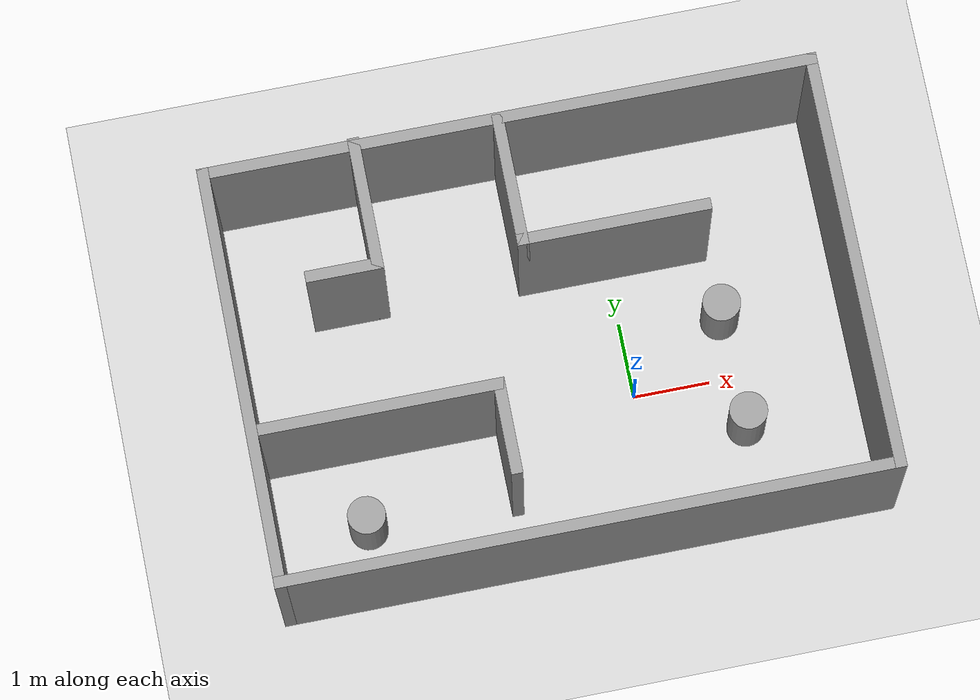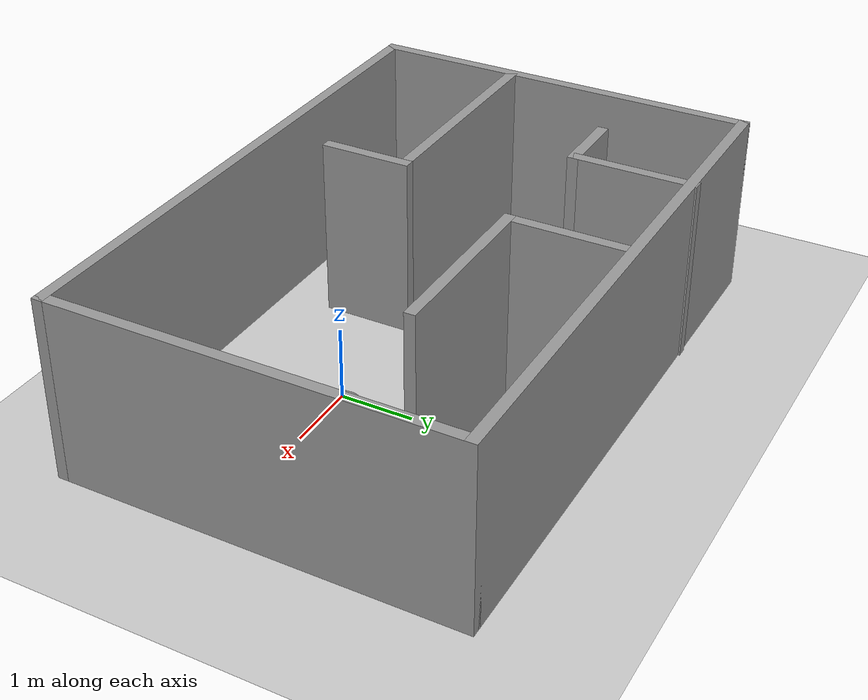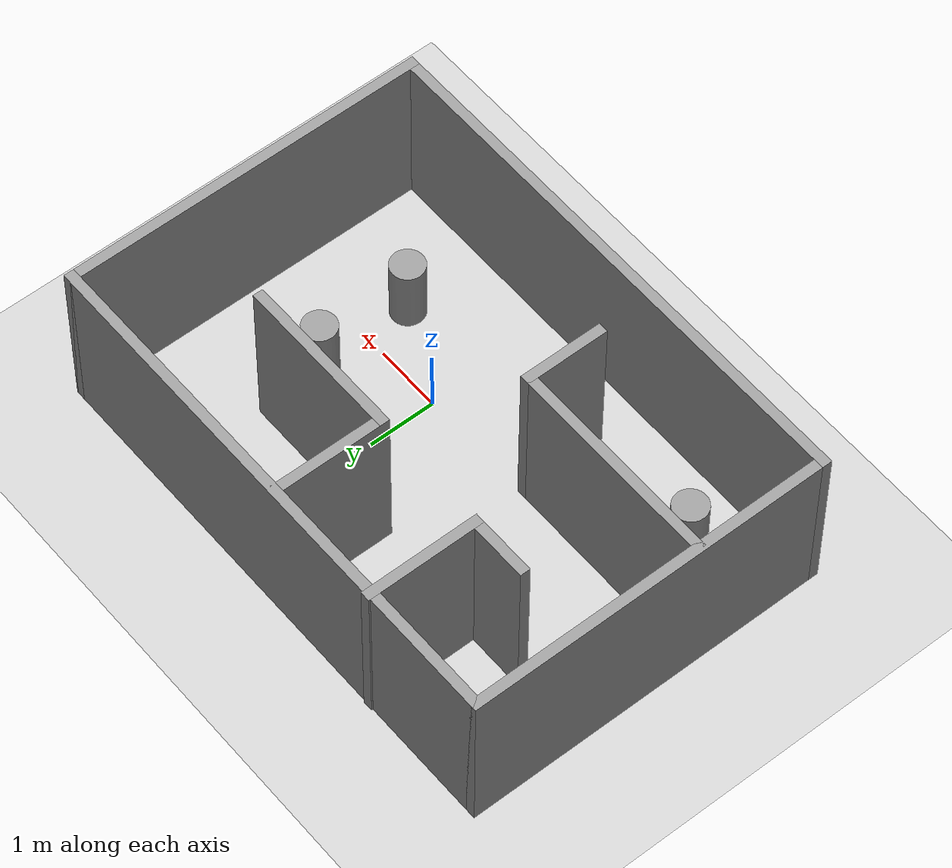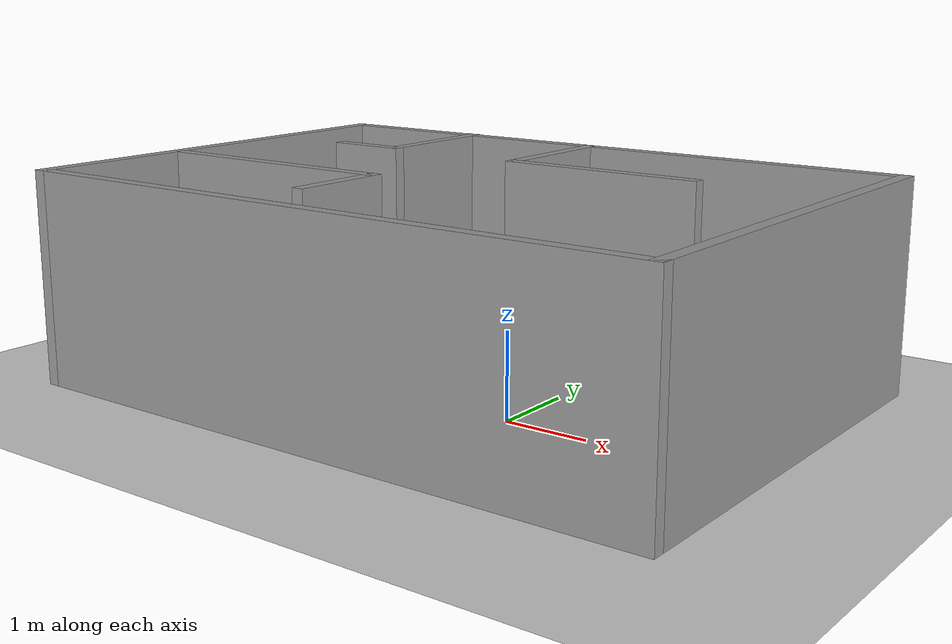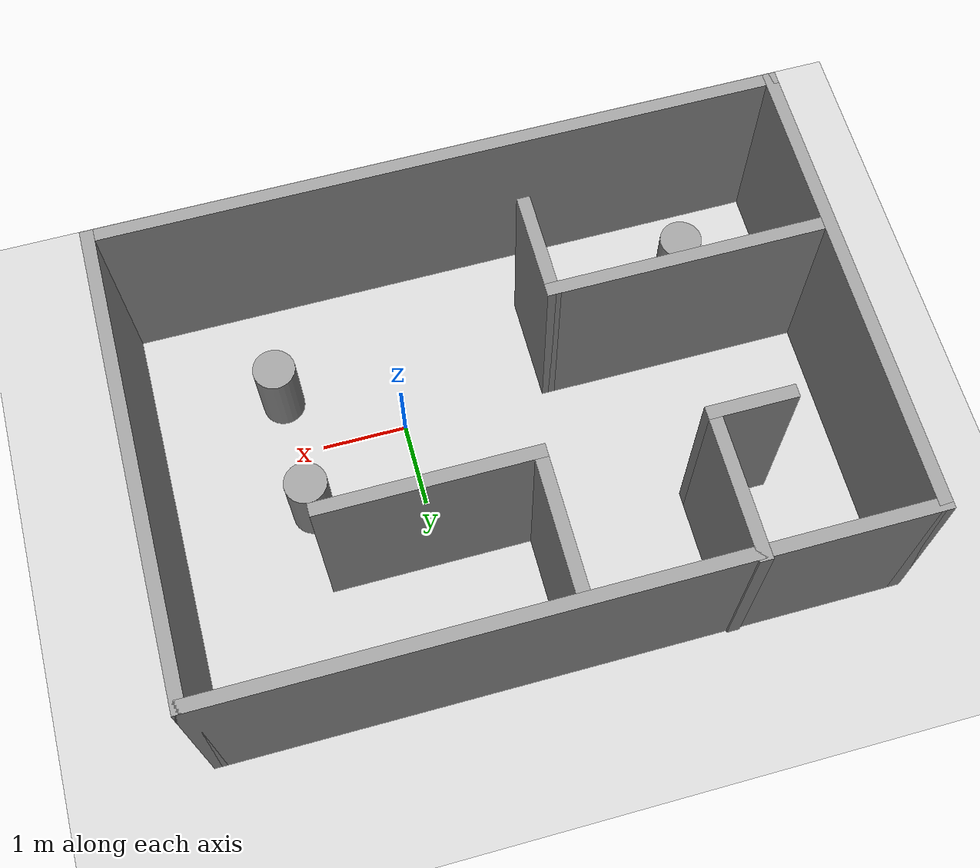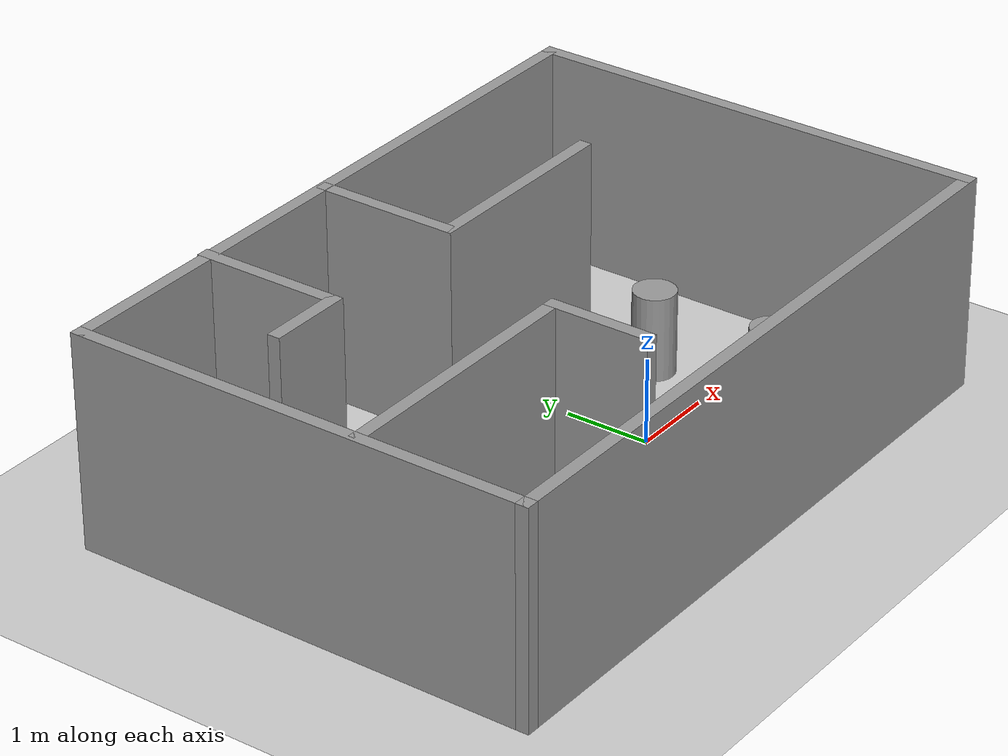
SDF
<sdf version="1.7">
 <world name="default">
  <light name="sun" type="directional">
   <pose>0 0 10 0 -0 0</pose>
   <diffuse>0.8 0.8 0.8 1</diffuse>
   <specular>0.2 0.2 0.2 1</specular>
   <attenuation>
    <range>1000</range>
    <constant>0.9</constant>
    <linear>0.01</linear>
    <quadratic>0.001</quadratic>
   </attenuation>
   <direction>-0.5 0.1 -0.9</direction>
   <spot><inner_angle>0</inner_angle><outer_angle>0</outer_angle><falloff>0</falloff></spot>
  </light>
  <model name="ground_plane">
   <static>1</static>
   <link name="link">
    <collision name="collision">
     <geometry><plane><normal>0 0 1</normal><size>100 100</size></plane></geometry>
     <surface><friction><ode><mu>100</mu><mu2>50</mu2></ode></friction></surface>
    </collision>
    <visual name="visual">
     <cast_shadows>0</cast_shadows>
     <geometry><plane><normal>0 0 1</normal><size>100 100</size></plane></geometry>
     <material>
      <script><uri>file://media/materials/scripts/gazebo.material</uri><name>Gazebo/Grey</name></script>
     </material>
    </visual>
   </link>
  </model>
  <gravity>0 0 -9.8</gravity>
  <magnetic_field>6e-06 2.3e-05 -4.2e-05</magnetic_field>
  <atmosphere type="adiabatic"/>
  <physics type="ode">
   <max_step_size>0.001</max_step_size>
   <real_time_factor>1</real_time_factor>
   <real_time_update_rate>1000</real_time_update_rate>
  </physics>
  <scene><ambient>0.4 0.4 0.4 1</ambient><background>0.7 0.7 0.7 1</background><shadows>1</shadows></scene>
  <audio><device>default</device></audio>
  <spherical_coordinates>
   <surface_model>EARTH_WGS84</surface_model>
   <latitude_deg>0</latitude_deg>
   <longitude_deg>0</longitude_deg>
   <elevation>0</elevation>
   <heading_deg>0</heading_deg>
  </spherical_coordinates>
  <model name="chapt7room">
   <pose>-1.00209 1.25924 0 0 -0 0</pose>
   <link name="Wall_0">
    <collision name="Wall_0_Collision">
     <geometry><box><size>8 0.15 2.5</size></box></geometry>
     <pose>0 0 1.25 0 -0 0</pose>
    </collision>
    <visual name="Wall_0_Visual">
     <pose>0 0 1.25 0 -0 0</pose>
     <geometry><box><size>8 0.15 2.5</size></box></geometry>
     <material>
      <script><uri>file://media/materials/scripts/gazebo.material</uri><name>Gazebo/Grey</name></script>
      <ambient>1 1 1 1</ambient>
     </material>
     <meta><layer>0</layer></meta>
    </visual>
    <pose>0 2.06634 0 0 -0 0</pose>
   </link>
   <link name="Wall_1">
    <collision name="Wall_1_Collision">
     <geometry><box><size>5.5 0.15 2.5</size></box></geometry>
     <pose>0 0 1.25 0 -0 0</pose>
    </collision>
    <visual name="Wall_1_Visual">
     <pose>0 0 1.25 0 -0 0</pose>
     <geometry><box><size>5.5 0.15 2.5</size></box></geometry>
     <material>
      <script><uri>file://media/materials/scripts/gazebo.material</uri><name>Gazebo/Grey</name></script>
      <ambient>1 1 1 1</ambient>
     </material>
     <meta><layer>0</layer></meta>
    </visual>
    <pose>3.925 -0.60866 0 0 -0 -1.5708</pose>
   </link>
   <link name="Wall_11">
    <collision name="Wall_11_Collision">
     <geometry><box><size>1.75 0.15 2.5</size></box></geometry>
     <pose>0 0 1.25 0 -0 0</pose>
    </collision>
    <visual name="Wall_11_Visual">
     <pose>0 0 1.25 0 -0 0</pose>
     <geometry><box><size>1.75 0.15 2.5</size></box></geometry>
     <material>
      <script><uri>file://media/materials/scripts/gazebo.material</uri><name>Gazebo/Grey</name></script>
      <ambient>1 1 1 1</ambient>
     </material>
     <meta><layer>0</layer></meta>
    </visual>
    <pose>-0.13158 1.24321 0 0 -0 -1.5708</pose>
   </link>
   <link name="Wall_12">
    <collision name="Wall_12_Collision">
     <geometry><box><size>2.5 0.15 2.5</size></box></geometry>
     <pose>0 0 1.25 0 -0 0</pose>
    </collision>
    <visual name="Wall_12_Visual">
     <pose>0 0 1.25 0 -0 0</pose>
     <geometry><box><size>2.5 0.15 2.5</size></box></geometry>
     <material>
      <script><uri>file://media/materials/scripts/gazebo.material</uri><name>Gazebo/Grey</name></script>
      <ambient>1 1 1 1</ambient>
     </material>
     <meta><layer>0</layer></meta>
    </visual>
    <pose>1.04342 0.443209 0 0 -0 0</pose>
   </link>
   <link name="Wall_2">
    <collision name="Wall_2_Collision">
     <geometry><box><size>8 0.15 2.5</size></box></geometry>
     <pose>0 0 1.25 0 -0 0</pose>
    </collision>
    <visual name="Wall_2_Visual">
     <pose>0 0 1.25 0 -0 0</pose>
     <geometry><box><size>8 0.15 2.5</size></box></geometry>
     <material>
      <script><uri>file://media/materials/scripts/gazebo.material</uri><name>Gazebo/Grey</name></script>
      <ambient>1 1 1 1</ambient>
     </material>
     <meta><layer>0</layer></meta>
    </visual>
    <pose>0 -3.28366 0 0 -0 3.14159</pose>
   </link>
   <link name="Wall_3">
    <collision name="Wall_3_Collision">
     <geometry><box><size>5.5 0.15 2.5</size></box></geometry>
     <pose>0 0 1.25 0 -0 0</pose>
    </collision>
    <visual name="Wall_3_Visual">
     <pose>0 0 1.25 0 -0 0</pose>
     <geometry><box><size>5.5 0.15 2.5</size></box></geometry>
     <material>
      <script><uri>file://media/materials/scripts/gazebo.material</uri><name>Gazebo/Grey</name></script>
      <ambient>1 1 1 1</ambient>
     </material>
     <meta><layer>0</layer></meta>
    </visual>
    <pose>-3.925 -0.60866 0 0 -0 1.5708</pose>
   </link>
   <link name="Wall_5">
    <collision name="Wall_5_Collision">
     <geometry><box><size>1.75 0.15 2.5</size></box></geometry>
     <pose>0 0 1.25 0 -0 0</pose>
    </collision>
    <visual name="Wall_5_Visual">
     <pose>0 0 1.25 0 -0 0</pose>
     <geometry><box><size>1.75 0.15 2.5</size></box></geometry>
     <material>
      <script><uri>file://media/materials/scripts/gazebo.material</uri><name>Gazebo/Grey</name></script>
      <ambient>1 1 1 1</ambient>
     </material>
     <meta><layer>0</layer></meta>
    </visual>
    <pose>-1.98203 1.28947 0 0 -0 -1.5708</pose>
   </link>
   <link name="Wall_6">
    <collision name="Wall_6_Collision">
     <geometry><box><size>1 0.15 2.5</size></box></geometry>
     <pose>0 0 1.25 0 -0 0</pose>
    </collision>
    <visual name="Wall_6_Visual">
     <pose>0 0 1.25 0 -0 0</pose>
     <geometry><box><size>1 0.15 2.5</size></box></geometry>
     <material>
      <script><uri>file://media/materials/scripts/gazebo.material</uri><name>Gazebo/Grey</name></script>
      <ambient>1 1 1 1</ambient>
     </material>
     <meta><layer>0</layer></meta>
    </visual>
    <pose>-2.40703 0.48947 0 0 -0 3.14159</pose>
   </link>
   <link name="Wall_8">
    <collision name="Wall_8_Collision">
     <geometry><box><size>3.25 0.15 2.5</size></box></geometry>
     <pose>0 0 1.25 0 -0 0</pose>
    </collision>
    <visual name="Wall_8_Visual">
     <pose>0 0 1.25 0 -0 0</pose>
     <geometry><box><size>3.25 0.15 2.5</size></box></geometry>
     <material>
      <script><uri>file://media/materials/scripts/gazebo.material</uri><name>Gazebo/Grey</name></script>
      <ambient>1 1 1 1</ambient>
     </material>
     <meta><layer>0</layer></meta>
    </visual>
    <pose>-2.32874 -1.33386 0 0 -0 0</pose>
   </link>
   <link name="Wall_9">
    <collision name="Wall_9_Collision">
     <geometry><box><size>1.25 0.15 2.5</size></box></geometry>
     <pose>0 0 1.25 0 -0 0</pose>
    </collision>
    <visual name="Wall_9_Visual">
     <pose>0 0 1.25 0 -0 0</pose>
     <geometry><box><size>1.25 0.15 2.5</size></box></geometry>
     <material>
      <script><uri>file://media/materials/scripts/gazebo.material</uri><name>Gazebo/Grey</name></script>
      <ambient>1 1 1 1</ambient>
     </material>
     <meta><layer>0</layer></meta>
    </visual>
    <pose>-0.778739 -1.88386 0 0 -0 -1.5708</pose>
   </link>
   <static>1</static>
  </model>
  <model name="unit_cylinder">
   <pose>1.33923 -0.679229 0.499998 -1e-06 1e-06 -1e-06</pose>
   <link name="link">
    <inertial>
     <mass>1</mass>
     <inertia><ixx>0.145833</ixx><ixy>0</ixy><ixz>0</ixz><iyy>0.145833</iyy><iyz>0</iyz><izz>0.125</izz></inertia>
    </inertial>
    <collision name="collision">
     <geometry><cylinder><radius>0.248039</radius><length>1</length></cylinder></geometry>
    </collision>
    <visual name="visual">
     <geometry><cylinder><radius>0.248039</radius><length>1</length></cylinder></geometry>
     <material>
      <script><name>Gazebo/Grey</name><uri>file://media/materials/scripts/gazebo.material</uri></script>
     </material>
    </visual>
   </link>
  </model>
  <model name="unit_cylinder_clone">
   <pose>-3.71206 -1.0776 0.499992 1e-06 -0 0</pose>
   <link name="link">
    <inertial>
     <mass>1</mass>
     <inertia><ixx>0.145833</ixx><ixy>0</ixy><ixz>0</ixz><iyy>0.145833</iyy><iyz>0</iyz><izz>0.125</izz></inertia>
    </inertial>
    <collision name="collision">
     <geometry><cylinder><radius>0.248039</radius><length>1</length></cylinder></geometry>
    </collision>
    <visual name="visual">
     <geometry><cylinder><radius>0.248039</radius><length>1</length></cylinder></geometry>
     <material>
      <script><name>Gazebo/Grey</name><uri>file://media/materials/scripts/gazebo.material</uri></script>
     </material>
    </visual>
   </link>
  </model>
  <model name="unit_cylinder_clone_0">
   <pose>1.29048 0.785038 0.499998 -1e-06 1e-06 -1e-06</pose>
   <link name="link">
    <inertial>
     <mass>1</mass>
     <inertia><ixx>0.145833</ixx><ixy>0</ixy><ixz>0</ixz><iyy>0.145833</iyy><iyz>0</iyz><izz>0.125</izz></inertia>
    </inertial>
    <collision name="collision">
     <geometry><cylinder><radius>0.248039</radius><length>1</length></cylinder></geometry>
    </collision>
    <visual name="visual">
     <geometry><cylinder><radius>0.248039</radius><length>1</length></cylinder></geometry>
     <material>
      <script><name>Gazebo/Grey</name><uri>file://media/materials/scripts/gazebo.material</uri></script>
     </material>
    </visual>
   </link>
  </model>
 </world>
</sdf>
